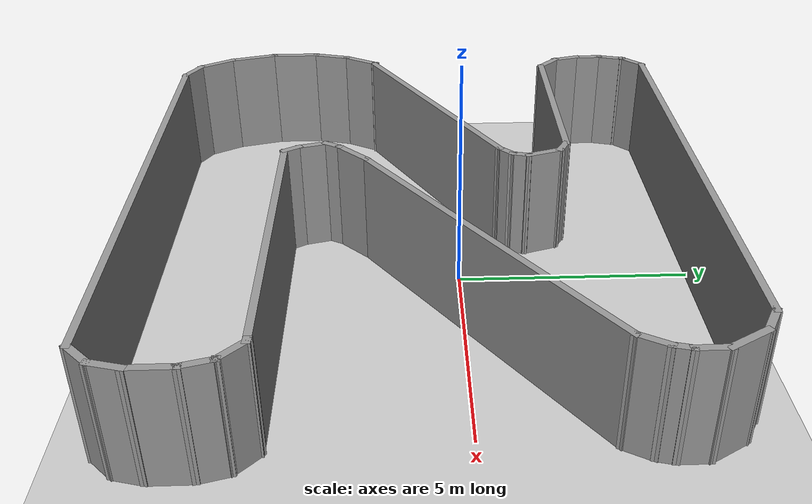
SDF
<sdf version="1.7">
 <world name="default">
  <light name="sun" type="directional">
   <pose>0 0 10 0 -0 0</pose>
   <diffuse>0.8 0.8 0.8 1</diffuse>
   <specular>0.2 0.2 0.2 1</specular>
   <attenuation>
    <range>1000</range>
    <constant>0.9</constant>
    <linear>0.01</linear>
    <quadratic>0.001</quadratic>
   </attenuation>
   <direction>-0.5 0.1 -0.9</direction>
   <spot><inner_angle>0</inner_angle><outer_angle>0</outer_angle><falloff>0</falloff></spot>
  </light>
  <model name="ground_plane">
   <static>1</static>
   <link name="link">
    <collision name="collision">
     <geometry><plane><normal>0 0 1</normal><size>100 100</size></plane></geometry>
     <surface>
      <contact><collide_bitmask>65535</collide_bitmask></contact>
      <friction><ode><mu>100</mu><mu2>50</mu2></ode></friction>
     </surface>
    </collision>
    <visual name="visual">
     <cast_shadows>0</cast_shadows>
     <geometry><plane><normal>0 0 1</normal><size>100 100</size></plane></geometry>
     <material>
      <script><uri>file://media/materials/scripts/gazebo.material</uri><name>Gazebo/Grey</name></script>
     </material>
    </visual>
   </link>
  </model>
  <gravity>0 0 -9.8</gravity>
  <magnetic_field>6e-06 2.3e-05 -4.2e-05</magnetic_field>
  <atmosphere type="adiabatic"/>
  <physics type="ode">
   <max_step_size>0.001</max_step_size>
   <real_time_factor>1</real_time_factor>
   <real_time_update_rate>1000</real_time_update_rate>
  </physics>
  <scene><ambient>0.4 0.4 0.4 1</ambient><background>0.7 0.7 0.7 1</background><shadows>1</shadows></scene>
  <spherical_coordinates>
   <surface_model>EARTH_WGS84</surface_model>
   <latitude_deg>0</latitude_deg>
   <longitude_deg>0</longitude_deg>
   <elevation>0</elevation>
   <heading_deg>0</heading_deg>
  </spherical_coordinates>
  <model name="zig-zag">
   <pose>-0.589441 -0.784175 0 0 -0 0</pose>
   <link name="Wall_43">
    <collision name="Wall_43_Collision">
     <geometry><box><size>0.75 0.15 2.5</size></box></geometry>
     <pose>0 0 1.25 0 -0 0</pose>
    </collision>
    <visual name="Wall_43_Visual">
     <pose>0 0 1.25 0 -0 0</pose>
     <geometry><box><size>0.75 0.15 2.5</size></box></geometry>
     <material>
      <script><uri>file://media/materials/scripts/gazebo.material</uri><name>Gazebo/Grey</name></script>
      <ambient>1 1 1 1</ambient>
     </material>
     <meta><layer>0</layer></meta>
    </visual>
    <pose>5.95334 3.58393 0 0 -0 1.0472</pose>
   </link>
   <link name="Wall_44">
    <collision name="Wall_44_Collision">
     <geometry><box><size>0.5 0.15 2.5</size></box></geometry>
     <pose>0 0 1.25 0 -0 0</pose>
    </collision>
    <visual name="Wall_44_Visual">
     <pose>0 0 1.25 0 -0 0</pose>
     <geometry><box><size>0.5 0.15 2.5</size></box></geometry>
     <material>
      <script><uri>file://media/materials/scripts/gazebo.material</uri><name>Gazebo/Grey</name></script>
      <ambient>1 1 1 1</ambient>
     </material>
     <meta><layer>0</layer></meta>
    </visual>
    <pose>6.14863 4.01278 0 0 -0 1.309</pose>
   </link>
   <link name="Wall_45">
    <collision name="Wall_45_Collision">
     <geometry><box><size>0.75 0.15 2.5</size></box></geometry>
     <pose>0 0 1.25 0 -0 0</pose>
    </collision>
    <visual name="Wall_45_Visual">
     <pose>0 0 1.25 0 -0 0</pose>
     <geometry><box><size>0.75 0.15 2.5</size></box></geometry>
     <material>
      <script><uri>file://media/materials/scripts/gazebo.material</uri><name>Gazebo/Grey</name></script>
      <ambient>1 1 1 1</ambient>
     </material>
     <meta><layer>0</layer></meta>
    </visual>
    <pose>6.19393 4.48181 0 0 -0 1.5708</pose>
   </link>
   <link name="Wall_46">
    <collision name="Wall_46_Collision">
     <geometry><box><size>1 0.15 2.5</size></box></geometry>
     <pose>0 0 1.25 0 -0 0</pose>
    </collision>
    <visual name="Wall_46_Visual">
     <pose>0 0 1.25 0 -0 0</pose>
     <geometry><box><size>1 0.15 2.5</size></box></geometry>
     <material>
      <script><uri>file://media/materials/scripts/gazebo.material</uri><name>Gazebo/Grey</name></script>
      <ambient>1 1 1 1</ambient>
     </material>
     <meta><layer>0</layer></meta>
    </visual>
    <pose>5.98143 5.14987 0 0 -0 2.0944</pose>
   </link>
   <link name="Wall_47">
    <collision name="Wall_47_Collision">
     <geometry><box><size>0.75 0.15 2.5</size></box></geometry>
     <pose>0 0 1.25 0 -0 0</pose>
    </collision>
    <visual name="Wall_47_Visual">
     <pose>0 0 1.25 0 -0 0</pose>
     <geometry><box><size>0.75 0.15 2.5</size></box></geometry>
     <material>
      <script><uri>file://media/materials/scripts/gazebo.material</uri><name>Gazebo/Grey</name></script>
      <ambient>1 1 1 1</ambient>
     </material>
     <meta><layer>0</layer></meta>
    </visual>
    <pose>5.50912 5.66793 0 0 -0 2.61799</pose>
   </link>
   <link name="Wall_48">
    <collision name="Wall_48_Collision">
     <geometry><box><size>10.75 0.15 2.5</size></box></geometry>
     <pose>0 0 1.25 0 -0 0</pose>
    </collision>
    <visual name="Wall_48_Visual">
     <pose>0 0 1.25 0 -0 0</pose>
     <geometry><box><size>10.75 0.15 2.5</size></box></geometry>
     <material>
      <script><uri>file://media/materials/scripts/gazebo.material</uri><name>Gazebo/Grey</name></script>
      <ambient>1 1 1 1</ambient>
     </material>
     <meta><layer>0</layer></meta>
    </visual>
    <pose>-0.050689 5.81794 0 0 -0 3.14159</pose>
   </link>
   <link name="Wall_49">
    <collision name="Wall_49_Collision">
     <geometry><box><size>0.75 0.15 2.5</size></box></geometry>
     <pose>0 0 1.25 0 -0 0</pose>
    </collision>
    <visual name="Wall_49_Visual">
     <pose>0 0 1.25 0 -0 0</pose>
     <geometry><box><size>0.75 0.15 2.5</size></box></geometry>
     <material>
      <script><uri>file://media/materials/scripts/gazebo.material</uri><name>Gazebo/Grey</name></script>
      <ambient>1 1 1 1</ambient>
     </material>
     <meta><layer>0</layer></meta>
    </visual>
    <pose>-5.56282 5.6058 0 0 -0 -2.35619</pose>
   </link>
   <link name="Wall_50">
    <collision name="Wall_50_Collision">
     <geometry><box><size>0.16 0.15 2.5</size></box></geometry>
     <pose>0 0 1.25 0 -0 0</pose>
    </collision>
    <visual name="Wall_50_Visual">
     <pose>0 0 1.25 0 -0 0</pose>
     <geometry><box><size>0.16 0.15 2.5</size></box></geometry>
     <material>
      <script><uri>file://media/materials/scripts/gazebo.material</uri><name>Gazebo/Grey</name></script>
      <ambient>1 1 1 1</ambient>
     </material>
     <meta><layer>0</layer></meta>
    </visual>
    <pose>-5.76995 5.39367 0 0 -0 0</pose>
   </link>
   <link name="Wall_51">
    <collision name="Wall_51_Collision">
     <geometry><box><size>0.75 0.15 2.5</size></box></geometry>
     <pose>0 0 1.25 0 -0 0</pose>
    </collision>
    <visual name="Wall_51_Visual">
     <pose>0 0 1.25 0 -0 0</pose>
     <geometry><box><size>0.75 0.15 2.5</size></box></geometry>
     <material>
      <script><uri>file://media/materials/scripts/gazebo.material</uri><name>Gazebo/Grey</name></script>
      <ambient>1 1 1 1</ambient>
     </material>
     <meta><layer>0</layer></meta>
    </visual>
    <pose>-5.8426 5.10389 0 0 -0 -1.8326</pose>
   </link>
   <link name="Wall_52">
    <collision name="Wall_52_Collision">
     <geometry><box><size>0.75 0.15 2.5</size></box></geometry>
     <pose>0 0 1.25 0 -0 0</pose>
    </collision>
    <visual name="Wall_52_Visual">
     <pose>0 0 1.25 0 -0 0</pose>
     <geometry><box><size>0.75 0.15 2.5</size></box></geometry>
     <material>
      <script><uri>file://media/materials/scripts/gazebo.material</uri><name>Gazebo/Grey</name></script>
      <ambient>1 1 1 1</ambient>
     </material>
     <meta><layer>0</layer></meta>
    </visual>
    <pose>-5.92025 4.51412 0 0 -0 -1.5708</pose>
   </link>
   <link name="Wall_53">
    <collision name="Wall_53_Collision">
     <geometry><box><size>0.75 0.15 2.5</size></box></geometry>
     <pose>0 0 1.25 0 -0 0</pose>
    </collision>
    <visual name="Wall_53_Visual">
     <pose>0 0 1.25 0 -0 0</pose>
     <geometry><box><size>0.75 0.15 2.5</size></box></geometry>
     <material>
      <script><uri>file://media/materials/scripts/gazebo.material</uri><name>Gazebo/Grey</name></script>
      <ambient>1 1 1 1</ambient>
     </material>
     <meta><layer>0</layer></meta>
    </visual>
    <pose>-5.8426 3.92434 0 0 -0 -1.309</pose>
   </link>
   <link name="Wall_54">
    <collision name="Wall_54_Collision">
     <geometry><box><size>0.75 0.15 2.5</size></box></geometry>
     <pose>0 0 1.25 0 -0 0</pose>
    </collision>
    <visual name="Wall_54_Visual">
     <pose>0 0 1.25 0 -0 0</pose>
     <geometry><box><size>0.75 0.15 2.5</size></box></geometry>
     <material>
      <script><uri>file://media/materials/scripts/gazebo.material</uri><name>Gazebo/Grey</name></script>
      <ambient>1 1 1 1</ambient>
     </material>
     <meta><layer>0</layer></meta>
    </visual>
    <pose>-5.55282 3.42243 0 0 -0 -0.785398</pose>
   </link>
   <link name="Wall_55">
    <collision name="Wall_55_Collision">
     <geometry><box><size>4.5 0.15 2.5</size></box></geometry>
     <pose>0 0 1.25 0 -0 0</pose>
    </collision>
    <visual name="Wall_55_Visual">
     <pose>0 0 1.25 0 -0 0</pose>
     <geometry><box><size>4.5 0.15 2.5</size></box></geometry>
     <material>
      <script><uri>file://media/materials/scripts/gazebo.material</uri><name>Gazebo/Grey</name></script>
      <ambient>1 1 1 1</ambient>
     </material>
     <meta><layer>0</layer></meta>
    </visual>
    <pose>-3.16569 3.2103 0 0 -0 0</pose>
   </link>
   <link name="Wall_56">
    <collision name="Wall_56_Collision">
     <geometry><box><size>0.5 0.15 2.5</size></box></geometry>
     <pose>0 0 1.25 0 -0 0</pose>
    </collision>
    <visual name="Wall_56_Visual">
     <pose>0 0 1.25 0 -0 0</pose>
     <geometry><box><size>0.5 0.15 2.5</size></box></geometry>
     <material>
      <script><uri>file://media/materials/scripts/gazebo.material</uri><name>Gazebo/Grey</name></script>
      <ambient>1 1 1 1</ambient>
     </material>
     <meta><layer>0</layer></meta>
    </visual>
    <pose>-0.839135 3.1228 0 0 -0 -0.523599</pose>
   </link>
   <link name="Wall_64">
    <collision name="Wall_64_Collision">
     <geometry><box><size>0.21248 0.15 2.5</size></box></geometry>
     <pose>0 0 1.25 0 -0 0</pose>
    </collision>
    <visual name="Wall_64_Visual">
     <pose>0 0 1.25 0 -0 0</pose>
     <geometry><box><size>0.21248 0.15 2.5</size></box></geometry>
     <material>
      <script><uri>file://media/materials/scripts/gazebo.material</uri><name>Gazebo/Grey</name></script>
      <ambient>1 1 1 1</ambient>
     </material>
     <meta><layer>0</layer></meta>
    </visual>
    <pose>5.70873 -2.95799 0 0 -0 -0.073729</pose>
   </link>
   <link name="Wall_65">
    <collision name="Wall_65_Collision">
     <geometry><box><size>0.75 0.15 2.5</size></box></geometry>
     <pose>0 0 1.25 0 -0 0</pose>
    </collision>
    <visual name="Wall_65_Visual">
     <pose>0 0 1.25 0 -0 0</pose>
     <geometry><box><size>0.75 0.15 2.5</size></box></geometry>
     <material>
      <script><uri>file://media/materials/scripts/gazebo.material</uri><name>Gazebo/Grey</name></script>
      <ambient>1 1 1 1</ambient>
     </material>
     <meta><layer>0</layer></meta>
    </visual>
    <pose>5.95201 -3.17243 0 0 -0 -0.785398</pose>
   </link>
   <link name="Wall_66">
    <collision name="Wall_66_Collision">
     <geometry><box><size>0.16 0.15 2.5</size></box></geometry>
     <pose>0 0 1.25 0 -0 0</pose>
    </collision>
    <visual name="Wall_66_Visual">
     <pose>0 0 1.25 0 -0 0</pose>
     <geometry><box><size>0.16 0.15 2.5</size></box></geometry>
     <material>
      <script><uri>file://media/materials/scripts/gazebo.material</uri><name>Gazebo/Grey</name></script>
      <ambient>1 1 1 1</ambient>
     </material>
     <meta><layer>0</layer></meta>
    </visual>
    <pose>6.16914 -3.38456 0 0 -0 0</pose>
   </link>
   <link name="Wall_67">
    <collision name="Wall_67_Collision">
     <geometry><box><size>0.75 0.15 2.5</size></box></geometry>
     <pose>0 0 1.25 0 -0 0</pose>
    </collision>
    <visual name="Wall_67_Visual">
     <pose>0 0 1.25 0 -0 0</pose>
     <geometry><box><size>0.75 0.15 2.5</size></box></geometry>
     <material>
      <script><uri>file://media/materials/scripts/gazebo.material</uri><name>Gazebo/Grey</name></script>
      <ambient>1 1 1 1</ambient>
     </material>
     <meta><layer>0</layer></meta>
    </visual>
    <pose>6.25179 -3.67434 0 0 -0 -1.309</pose>
   </link>
   <link name="Wall_68">
    <collision name="Wall_68_Collision">
     <geometry><box><size>1 0.15 2.5</size></box></geometry>
     <pose>0 0 1.25 0 -0 0</pose>
    </collision>
    <visual name="Wall_68_Visual">
     <pose>0 0 1.25 0 -0 0</pose>
     <geometry><box><size>1 0.15 2.5</size></box></geometry>
     <material>
      <script><uri>file://media/materials/scripts/gazebo.material</uri><name>Gazebo/Grey</name></script>
      <ambient>1 1 1 1</ambient>
     </material>
     <meta><layer>0</layer></meta>
    </visual>
    <pose>6.32944 -4.38912 0 0 -0 -1.5708</pose>
   </link>
   <link name="Wall_69">
    <collision name="Wall_69_Collision">
     <geometry><box><size>0.75 0.15 2.5</size></box></geometry>
     <pose>0 0 1.25 0 -0 0</pose>
    </collision>
    <visual name="Wall_69_Visual">
     <pose>0 0 1.25 0 -0 0</pose>
     <geometry><box><size>0.75 0.15 2.5</size></box></geometry>
     <material>
      <script><uri>file://media/materials/scripts/gazebo.material</uri><name>Gazebo/Grey</name></script>
      <ambient>1 1 1 1</ambient>
     </material>
     <meta><layer>0</layer></meta>
    </visual>
    <pose>6.25179 -5.10389 0 0 -0 -1.8326</pose>
   </link>
   <link name="Wall_70">
    <collision name="Wall_70_Collision">
     <geometry><box><size>0.75 0.15 2.5</size></box></geometry>
     <pose>0 0 1.25 0 -0 0</pose>
    </collision>
    <visual name="Wall_70_Visual">
     <pose>0 0 1.25 0 -0 0</pose>
     <geometry><box><size>0.75 0.15 2.5</size></box></geometry>
     <material>
      <script><uri>file://media/materials/scripts/gazebo.material</uri><name>Gazebo/Grey</name></script>
      <ambient>1 1 1 1</ambient>
     </material>
     <meta><layer>0</layer></meta>
    </visual>
    <pose>5.96201 -5.6058 0 0 -0 -2.35619</pose>
   </link>
   <link name="Wall_75">
    <collision name="Wall_75_Collision">
     <geometry><box><size>11 0.15 2.5</size></box></geometry>
     <pose>0 0 1.25 0 -0 0</pose>
    </collision>
    <visual name="Wall_75_Visual">
     <pose>0 0 1.25 0 -0 0</pose>
     <geometry><box><size>11 0.15 2.5</size></box></geometry>
     <material>
      <script><uri>file://media/materials/scripts/gazebo.material</uri><name>Gazebo/Grey</name></script>
      <ambient>1 1 1 1</ambient>
     </material>
     <meta><layer>0</layer></meta>
    </visual>
    <pose>0.32488 -5.81794 0 0 -0 3.14159</pose>
   </link>
   <link name="Wall_76">
    <collision name="Wall_76_Collision">
     <geometry><box><size>0.75 0.15 2.5</size></box></geometry>
     <pose>0 0 1.25 0 -0 0</pose>
    </collision>
    <visual name="Wall_76_Visual">
     <pose>0 0 1.25 0 -0 0</pose>
     <geometry><box><size>0.75 0.15 2.5</size></box></geometry>
     <material>
      <script><uri>file://media/materials/scripts/gazebo.material</uri><name>Gazebo/Grey</name></script>
      <ambient>1 1 1 1</ambient>
     </material>
     <meta><layer>0</layer></meta>
    </visual>
    <pose>-5.35993 -5.66793 0 0 -0 2.61799</pose>
   </link>
   <link name="Wall_77">
    <collision name="Wall_77_Collision">
     <geometry><box><size>1 0.15 2.5</size></box></geometry>
     <pose>0 0 1.25 0 -0 0</pose>
    </collision>
    <visual name="Wall_77_Visual">
     <pose>0 0 1.25 0 -0 0</pose>
     <geometry><box><size>1 0.15 2.5</size></box></geometry>
     <material>
      <script><uri>file://media/materials/scripts/gazebo.material</uri><name>Gazebo/Grey</name></script>
      <ambient>1 1 1 1</ambient>
     </material>
     <meta><layer>0</layer></meta>
    </visual>
    <pose>-5.83223 -5.14987 0 0 -0 2.0944</pose>
   </link>
   <link name="Wall_78">
    <collision name="Wall_78_Collision">
     <geometry><box><size>1.25 0.15 2.5</size></box></geometry>
     <pose>0 0 1.25 0 -0 0</pose>
    </collision>
    <visual name="Wall_78_Visual">
     <pose>0 0 1.25 0 -0 0</pose>
     <geometry><box><size>1.25 0.15 2.5</size></box></geometry>
     <material>
      <script><uri>file://media/materials/scripts/gazebo.material</uri><name>Gazebo/Grey</name></script>
      <ambient>1 1 1 1</ambient>
     </material>
     <meta><layer>0</layer></meta>
    </visual>
    <pose>-6.18709 -4.25055 0 0 -0 1.8326</pose>
   </link>
   <link name="Wall_79">
    <collision name="Wall_79_Collision">
     <geometry><box><size>1.25 0.15 2.5</size></box></geometry>
     <pose>0 0 1.25 0 -0 0</pose>
    </collision>
    <visual name="Wall_79_Visual">
     <pose>0 0 1.25 0 -0 0</pose>
     <geometry><box><size>1.25 0.15 2.5</size></box></geometry>
     <material>
      <script><uri>file://media/materials/scripts/gazebo.material</uri><name>Gazebo/Grey</name></script>
      <ambient>1 1 1 1</ambient>
     </material>
     <meta><layer>0</layer></meta>
    </visual>
    <pose>-6.32944 -3.16929 0 0 -0 1.5708</pose>
   </link>
   <link name="Wall_80">
    <collision name="Wall_80_Collision">
     <geometry><box><size>1 0.15 2.5</size></box></geometry>
     <pose>0 0 1.25 0 -0 0</pose>
    </collision>
    <visual name="Wall_80_Visual">
     <pose>0 0 1.25 0 -0 0</pose>
     <geometry><box><size>1 0.15 2.5</size></box></geometry>
     <material>
      <script><uri>file://media/materials/scripts/gazebo.material</uri><name>Gazebo/Grey</name></script>
      <ambient>1 1 1 1</ambient>
     </material>
     <meta><layer>0</layer></meta>
    </visual>
    <pose>-6.21944 -2.20878 0 0 -0 1.309</pose>
   </link>
   <link name="Wall_81">
    <collision name="Wall_81_Collision">
     <geometry><box><size>1 0.15 2.5</size></box></geometry>
     <pose>0 0 1.25 0 -0 0</pose>
    </collision>
    <visual name="Wall_81_Visual">
     <pose>0 0 1.25 0 -0 0</pose>
     <geometry><box><size>1 0.15 2.5</size></box></geometry>
     <material>
      <script><uri>file://media/materials/scripts/gazebo.material</uri><name>Gazebo/Grey</name></script>
      <ambient>1 1 1 1</ambient>
     </material>
     <meta><layer>0</layer></meta>
    </visual>
    <pose>-5.89694 -1.4302 0 0 -0 1.0472</pose>
   </link>
   <link name="Wall_82">
    <collision name="Wall_82_Collision">
     <geometry><box><size>0.16 0.15 2.5</size></box></geometry>
     <pose>0 0 1.25 0 -0 0</pose>
    </collision>
    <visual name="Wall_82_Visual">
     <pose>0 0 1.25 0 -0 0</pose>
     <geometry><box><size>0.16 0.15 2.5</size></box></geometry>
     <material>
      <script><uri>file://media/materials/scripts/gazebo.material</uri><name>Gazebo/Grey</name></script>
      <ambient>1 1 1 1</ambient>
     </material>
     <meta><layer>0</layer></meta>
    </visual>
    <pose>-5.67944 -1.06214 0 0 -0 0</pose>
   </link>
   <link name="Wall_84">
    <collision name="Wall_84_Collision">
     <geometry><box><size>0.188302 0.15 2.5</size></box></geometry>
     <pose>0 0 1.25 0 -0 0</pose>
    </collision>
    <visual name="Wall_84_Visual">
     <pose>0 0 1.25 0 -0 0</pose>
     <geometry><box><size>0.188302 0.15 2.5</size></box></geometry>
     <material>
      <script><uri>file://media/materials/scripts/gazebo.material</uri><name>Gazebo/Grey</name></script>
      <ambient>1 1 1 1</ambient>
     </material>
     <meta><layer>0</layer></meta>
    </visual>
    <pose>-5.66552 -1.06511 0 0 -0 -0.155848</pose>
   </link>
   <link name="Wall_85">
    <collision name="Wall_85_Collision">
     <geometry><box><size>5.75 0.15 2.5</size></box></geometry>
     <pose>0 0 1.25 0 -0 0</pose>
    </collision>
    <visual name="Wall_85_Visual">
     <pose>0 0 1.25 0 -0 0</pose>
     <geometry><box><size>5.75 0.15 2.5</size></box></geometry>
     <material>
      <script><uri>file://media/materials/scripts/gazebo.material</uri><name>Gazebo/Grey</name></script>
      <ambient>1 1 1 1</ambient>
     </material>
     <meta><layer>0</layer></meta>
    </visual>
    <pose>-3.22173 0.331919 0 0 -0 0.523599</pose>
   </link>
   <link name="Wall_86">
    <collision name="Wall_86_Collision">
     <geometry><box><size>0.5 0.15 2.5</size></box></geometry>
     <pose>0 0 1.25 0 -0 0</pose>
    </collision>
    <visual name="Wall_86_Visual">
     <pose>0 0 1.25 0 -0 0</pose>
     <geometry><box><size>0.5 0.15 2.5</size></box></geometry>
     <material>
      <script><uri>file://media/materials/scripts/gazebo.material</uri><name>Gazebo/Grey</name></script>
      <ambient>1 1 1 1</ambient>
     </material>
     <meta><layer>0</layer></meta>
    </visual>
    <pose>-0.673116 1.85566 0 0 -0 0.785398</pose>
   </link>
   <link name="Wall_87">
    <collision name="Wall_87_Collision">
     <geometry><box><size>0.5 0.15 2.5</size></box></geometry>
     <pose>0 0 1.25 0 -0 0</pose>
    </collision>
    <visual name="Wall_87_Visual">
     <pose>0 0 1.25 0 -0 0</pose>
     <geometry><box><size>0.5 0.15 2.5</size></box></geometry>
     <material>
      <script><uri>file://media/materials/scripts/gazebo.material</uri><name>Gazebo/Grey</name></script>
      <ambient>1 1 1 1</ambient>
     </material>
     <meta><layer>0</layer></meta>
    </visual>
    <pose>-0.504079 2.14844 0 0 -0 1.309</pose>
   </link>
   <link name="Wall_88">
    <collision name="Wall_88_Collision">
     <geometry><box><size>0.903396 0.15 2.5</size></box></geometry>
     <pose>0 0 1.25 0 -0 0</pose>
    </collision>
    <visual name="Wall_88_Visual">
     <pose>0 0 1.25 0 -0 0</pose>
     <geometry><box><size>0.903396 0.15 2.5</size></box></geometry>
     <material>
      <script><uri>file://media/materials/scripts/gazebo.material</uri><name>Gazebo/Grey</name></script>
      <ambient>1 1 1 1</ambient>
     </material>
     <meta><layer>0</layer></meta>
    </visual>
    <pose>-0.573183 2.67639 0 0 -0 1.87935</pose>
   </link>
   <link name="Wall_90">
    <collision name="Wall_90_Collision">
     <geometry><box><size>6.75 0.15 2.5</size></box></geometry>
     <pose>0 0 1.25 0 -0 0</pose>
    </collision>
    <visual name="Wall_90_Visual">
     <pose>0 0 1.25 0 -0 0</pose>
     <geometry><box><size>6.75 0.15 2.5</size></box></geometry>
     <material>
      <script><uri>file://media/materials/scripts/gazebo.material</uri><name>Gazebo/Grey</name></script>
      <ambient>1 1 1 1</ambient>
     </material>
     <meta><layer>0</layer></meta>
    </visual>
    <pose>2.43988 -2.9603 0 0 -0 3.14159</pose>
   </link>
   <link name="Wall_91">
    <collision name="Wall_91_Collision">
     <geometry><box><size>0.5 0.15 2.5</size></box></geometry>
     <pose>0 0 1.25 0 -0 0</pose>
    </collision>
    <visual name="Wall_91_Visual">
     <pose>0 0 1.25 0 -0 0</pose>
     <geometry><box><size>0.5 0.15 2.5</size></box></geometry>
     <material>
      <script><uri>file://media/materials/scripts/gazebo.material</uri><name>Gazebo/Grey</name></script>
      <ambient>1 1 1 1</ambient>
     </material>
     <meta><layer>0</layer></meta>
    </visual>
    <pose>-0.94762 -2.80874 0 0 -0 2.0944</pose>
   </link>
   <link name="Wall_92">
    <collision name="Wall_92_Collision">
     <geometry><box><size>0.75 0.15 2.5</size></box></geometry>
     <pose>0 0 1.25 0 -0 0</pose>
    </collision>
    <visual name="Wall_92_Visual">
     <pose>0 0 1.25 0 -0 0</pose>
     <geometry><box><size>0.75 0.15 2.5</size></box></geometry>
     <material>
      <script><uri>file://media/materials/scripts/gazebo.material</uri><name>Gazebo/Grey</name></script>
      <ambient>1 1 1 1</ambient>
     </material>
     <meta><layer>0</layer></meta>
    </visual>
    <pose>-1.11277 -2.36741 0 0 -0 1.8326</pose>
   </link>
   <link name="Wall_93">
    <collision name="Wall_93_Collision">
     <geometry><box><size>0.5 0.15 2.5</size></box></geometry>
     <pose>0 0 1.25 0 -0 0</pose>
    </collision>
    <visual name="Wall_93_Visual">
     <pose>0 0 1.25 0 -0 0</pose>
     <geometry><box><size>0.5 0.15 2.5</size></box></geometry>
     <material>
      <script><uri>file://media/materials/scripts/gazebo.material</uri><name>Gazebo/Grey</name></script>
      <ambient>1 1 1 1</ambient>
     </material>
     <meta><layer>0</layer></meta>
    </visual>
    <pose>-1.10291 -1.92608 0 0 -0 1.0472</pose>
   </link>
   <link name="Wall_94">
    <collision name="Wall_94_Collision">
     <geometry><box><size>1 0.15 2.5</size></box></geometry>
     <pose>0 0 1.25 0 -0 0</pose>
    </collision>
    <visual name="Wall_94_Visual">
     <pose>0 0 1.25 0 -0 0</pose>
     <geometry><box><size>1 0.15 2.5</size></box></geometry>
     <material>
      <script><uri>file://media/materials/scripts/gazebo.material</uri><name>Gazebo/Grey</name></script>
      <ambient>1 1 1 1</ambient>
     </material>
     <meta><layer>0</layer></meta>
    </visual>
    <pose>-0.714891 -1.474 0 0 -0 0.785398</pose>
   </link>
   <link name="Wall_95">
    <collision name="Wall_95_Collision">
     <geometry><box><size>7.82388 0.15 2.5</size></box></geometry>
     <pose>0 0 1.25 0 -0 0</pose>
    </collision>
    <visual name="Wall_95_Visual">
     <pose>0 0 1.25 0 -0 0</pose>
     <geometry><box><size>7.82388 0.15 2.5</size></box></geometry>
     <material>
      <script><uri>file://media/materials/scripts/gazebo.material</uri><name>Gazebo/Grey</name></script>
      <ambient>1 1 1 1</ambient>
     </material>
     <meta><layer>0</layer></meta>
    </visual>
    <pose>2.69448 1.07532 0 0 -0 0.626228</pose>
   </link>
   <static>1</static>
  </model>
 </world>
</sdf>
